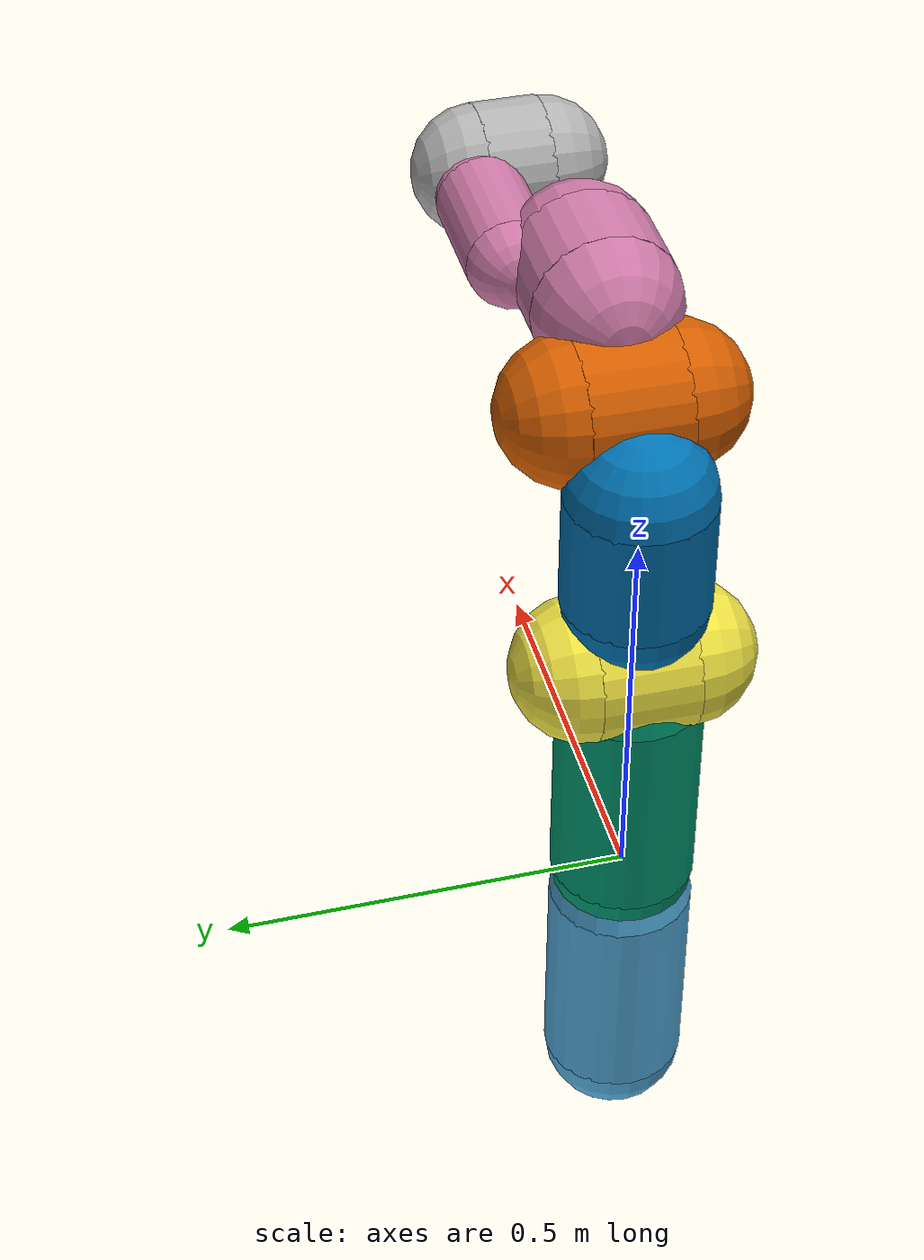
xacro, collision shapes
<?xml version="1.0" encoding="utf-8"?>
<robot xmlns:xacro="http://www.ros.org/wiki/xacro" name="panda">
  <xacro:arg name="arm_id" default="panda"/>
  <xacro:arg name="use_cylinder_collision_model" default="true"/>
  <xacro:arg name="use_gazebo_sim" default="false"/>
  <xacro:arg name="hardware_interface" default="PositionJointInterface"/>

  <xacro:include filename="$(find franka_description)/robots/panda_arm.xacro" />

  <xacro:if value="$(arg use_gazebo_sim)">
    <xacro:include filename="$(find franka_description)/robots/panda.gazebo.xacro"/>
    <xacro:include filename="$(find franka_description)/robots/panda.control.xacro"/>
  </xacro:if>
  <link name="world"/>
  <xacro:panda_arm xyz="0 0 0" rpy="0 0 0" connected_to="world" arm_id="$(arg arm_id)" safety_distance="0.03" use_cylinder_collision_model="$(arg use_cylinder_collision_model)"/>

  <xacro:if value="$(arg use_gazebo_sim)">
    <xacro:arm_gazebo arm_id="$(arg arm_id)"/>
    <xacro:arm_control arm_id="$(arg arm_id)" hardware_interface="$(arg hardware_interface)"/>
    <gazebo>
      <plugin name="gazebo_ros_control" filename="libgazebo_ros_control.so"/>
    </gazebo>
  </xacro:if>
</robot>

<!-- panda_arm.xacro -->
<robot xmlns:xacro="http://www.ros.org/wiki/xacro" name="panda">
  <xacro:arg name="use_gazebo_sim" default="false"/>
  <!-- safety_distance: Minimum safety distance in [m] by which the collision volumes are expanded and which is enforced during robot motions -->
  <!-- arm_id: Namespace of the panda arm. Serves to differentiate between arms in case of multiple instances. -->
  <xacro:macro name="panda_arm" params="arm_id:='panda' description_pkg:='franka_description' connected_to:='' xyz:='0 0 0' rpy:='0 0 0' safety_distance:=0 use_cylinder_collision_model:='true'">
    <xacro:unless value="${not connected_to}">
      <joint name="${arm_id}_virtual_joint" type="fixed">
        <parent link="${connected_to}"/>
        <child link="${arm_id}_link0"/>
        <origin rpy="${rpy}" xyz="${xyz}"/>
        <xacro:if value="$(arg use_gazebo_sim)">
          <dynamics damping="1.0"/>
        </xacro:if>
      </joint>
    </xacro:unless>
    <xacro:macro name="arm_link" params="name visual_mesh:='' collision_mesh:='' mass:='0.0'
      **cylinder_collision_model use_cylinder_collision_model:='true'">
      <link name="${name}">
        <xacro:unless value="${not visual_mesh}">
          <visual>
            <geometry>
              <mesh filename="${visual_mesh}"/>
            </geometry>
          </visual>
        </xacro:unless>
        <xacro:if value="${use_cylinder_collision_model}">
          <xacro:insert_block name="cylinder_collision_model"/>
        </xacro:if>
        <!-- Fallback to mesh model, when cylinder collision model is requested to be not used and
             there is a specified collision mesh.-->
        <xacro:unless value="${use_cylinder_collision_model and (not collision_mesh)}">
          <collision>
            <geometry>
              <mesh filename="${collision_mesh}"/>
            </geometry>
          </collision>
        </xacro:unless>
        <xacro:if value="$(arg use_gazebo_sim)">
          <inertial>
            <origin xyz="0 0 0" rpy="0 0 0" />
            <mass value="${mass}"/>
            <inertia ixx="0.3" ixy="0.0" ixz="0.0" iyy="0.3" iyz="0.0" izz="0.3" />
          </inertial>
        </xacro:if>
      </link>
    </xacro:macro>

    <xacro:macro name="arm_joint" params="name type:='fixed' rpy xyz soft_lower_limit:='' soft_upper_limit:=''
                            parent_link child_link limit_effort:='' limit_lower:='' limit_upper:='' limit_velocity:=''">
      <joint name="${name}" type="${type}">
        <xacro:if value="${type == 'revolute'}">
          <safety_controller k_position="100.0" k_velocity="40.0" soft_lower_limit="${soft_lower_limit}" soft_upper_limit="${soft_upper_limit}"/>
        </xacro:if>
        <origin rpy="${rpy}" xyz="${xyz}"/>
        <parent link="${parent_link}"/>
        <child link="${child_link}"/>
        <xacro:if value="${type == 'revolute'}">
          <limit effort="${limit_effort}" lower="${limit_lower}" upper="${limit_upper}" velocity="${limit_velocity}"/>
          <axis xyz="0 0 1"/>
        </xacro:if>
        <xacro:if value="${type == 'fixed'}">
          <axis xyz="0 0 0"/>
        </xacro:if>
        <dynamics damping="1.0"/>
      </joint>
    </xacro:macro>

    <xacro:if value="${use_cylinder_collision_model}">
      <xacro:arm_link name="${arm_id}_link0" visual_mesh="package://${description_pkg}/meshes/visual/link0.dae" mass="3.06">
        <cylinder_collision_model>
          <collision>
            <origin xyz="0 0 -0.1915" rpy="0 0 0"/>
            <geometry>
              <cylinder radius="${0.06+safety_distance}" length="0.2830" />
            </geometry>
          </collision>
          <collision>
            <origin xyz="0 0 -0.333" rpy="0 0 0"/>
            <geometry>
              <sphere radius="${0.06+safety_distance}" />
            </geometry>
          </collision>
          <collision>
            <origin xyz="0 0 -0.05" rpy="0 0 0"/>
            <geometry>
              <sphere radius="${0.06+safety_distance}" />
            </geometry>
          </collision>
        </cylinder_collision_model>
      </xacro:arm_link>
      <xacro:arm_link name="${arm_id}_link1" visual_mesh="package://${description_pkg}/meshes/visual/link1.dae" mass="2.34">
        <cylinder_collision_model>
          <collision>
            <origin xyz="0 0 -0.1915" rpy="0 0 0"/>
            <geometry>
              <cylinder radius="${0.06+safety_distance}" length="0.2830" />
            </geometry>
          </collision>
          <collision>
            <origin xyz="0 0 -0.333" rpy="0 0 0"/>
            <geometry>
              <sphere radius="${0.06+safety_distance}" />
            </geometry>
          </collision>
          <collision>
            <origin xyz="0 0 -0.05" rpy="0 0 0"/>
            <geometry>
              <sphere radius="${0.06+safety_distance}" />
            </geometry>
          </collision>
        </cylinder_collision_model>
      </xacro:arm_link>
      <xacro:arm_link name="${arm_id}_link2" visual_mesh="package://${description_pkg}/meshes/visual/link2.dae" mass="2.36">
        <cylinder_collision_model>
          <collision>
            <origin xyz="0 0 0" rpy="0 0 0"/>
            <geometry>
              <cylinder radius="${0.06+safety_distance}" length="0.12" />
            </geometry>
          </collision>
          <collision>
            <origin xyz="0 0 -0.06" rpy="0 0 0"/>
            <geometry>
              <sphere radius="${0.06+safety_distance}" />
            </geometry>
          </collision>
          <collision>
            <origin xyz="0 0 0.06" rpy="0 0 0"/>
            <geometry>
              <sphere radius="${0.06+safety_distance}" />
            </geometry>
          </collision>
        </cylinder_collision_model>
      </xacro:arm_link>
      <xacro:arm_link name="${arm_id}_link3" visual_mesh="package://${description_pkg}/meshes/visual/link3.dae" mass="2.38">
        <cylinder_collision_model>
          <collision>
            <origin xyz="0 0 -0.145" rpy="0 0 0"/>
            <geometry>
              <cylinder radius="${0.06+safety_distance}" length="0.15" />
            </geometry>
          </collision>
          <collision>
            <origin xyz="0 0 -0.22" rpy="0 0 0"/>
            <geometry>
              <sphere radius="${0.06+safety_distance}" />
            </geometry>
          </collision>
          <collision>
            <origin xyz="0 0 -0.07" rpy="0 0 0"/>
            <geometry>
              <sphere radius="${0.06+safety_distance}" />
            </geometry>
          </collision>
        </cylinder_collision_model>
      </xacro:arm_link>
      <xacro:arm_link name="${arm_id}_link4" visual_mesh="package://${description_pkg}/meshes/visual/link4.dae" mass="2.43">
        <cylinder_collision_model>
          <collision>
            <origin xyz="0 0 0" rpy="0 0 0"/>
            <geometry>
              <cylinder radius="${0.06+safety_distance}" length="0.12" />
            </geometry>
          </collision>
          <collision>
            <origin xyz="0 0 0.06" rpy="0 0 0"/>
            <geometry>
              <sphere radius="${0.06+safety_distance}" />
            </geometry>
          </collision>
          <collision>
            <origin xyz="0 0 -0.06" rpy="0 0 0"/>
            <geometry>
              <sphere radius="${0.06+safety_distance}" />
            </geometry>
          </collision>
        </cylinder_collision_model>
      </xacro:arm_link>
      <xacro:arm_link name="${arm_id}_link5" visual_mesh="package://${description_pkg}/meshes/visual/link5.dae" mass="3.5">
        <cylinder_collision_model>
          <collision>
            <origin xyz="0 0 -0.26" rpy="0 0 0"/>
            <geometry>
              <cylinder radius="${0.06+safety_distance}" length="0.1" />
            </geometry>
          </collision>
          <collision>
            <origin xyz="0 0 -0.31" rpy="0 0 0"/>
            <geometry>
              <sphere radius="${0.06+safety_distance}" />
            </geometry>
          </collision>
          <collision>
            <origin xyz="0 0 -0.21" rpy="0 0 0"/>
            <geometry>
              <sphere radius="${0.06+safety_distance}" />
            </geometry>
          </collision>
          <collision>
            <origin xyz="0 0.08 -0.13" rpy="0 0 0"/>
            <geometry>
              <cylinder radius="${0.025+safety_distance}" length="0.14" />
            </geometry>
          </collision>
          <collision>
            <origin xyz="0 0.08 -0.06" rpy="0 0 0"/>
            <geometry>
              <sphere radius="${0.025+safety_distance}" />
            </geometry>
          </collision>
          <collision>
            <origin xyz="0 0.08 -0.20" rpy="0 0 0"/>
            <geometry>
              <sphere radius="${0.025+safety_distance}" />
            </geometry>
          </collision>
        </cylinder_collision_model>
      </xacro:arm_link>
      <xacro:arm_link name="${arm_id}_link6" visual_mesh="package://${description_pkg}/meshes/visual/link6.dae" mass="1.47">
        <cylinder_collision_model>
          <collision>
            <origin xyz="0 0 -0.03" rpy="0 0 0"/>
            <geometry>
              <cylinder radius="${0.05+safety_distance}" length="0.08" />
            </geometry>
          </collision>
          <collision>
            <origin xyz="0 0 0.01" rpy="0 0 0"/>
            <geometry>
              <sphere radius="${0.05+safety_distance}" />
            </geometry>
          </collision>
          <collision>
            <origin xyz="0 0 -0.07" rpy="0 0 0"/>
            <geometry>
              <sphere radius="${0.05+safety_distance}" />
            </geometry>
          </collision>
        </cylinder_collision_model>
      </xacro:arm_link>
      <xacro:arm_link name="${arm_id}_link7" visual_mesh="package://${description_pkg}/meshes/visual/link7.dae" mass="0.45">
        <cylinder_collision_model>
          <collision>
            <origin xyz="0 0 0.01" rpy="0 0 0"/>
            <geometry>
              <cylinder radius="${0.04+safety_distance}" length="0.14" />
            </geometry>
          </collision>
          <collision>
            <origin xyz="0 0 0.08" rpy="0 0 0"/>
            <geometry>
              <sphere radius="${0.04+safety_distance}" />
            </geometry>
          </collision>
          <collision>
            <origin xyz="0 0 -0.06" rpy="0 0 0"/>
            <geometry>
              <sphere radius="${0.04+safety_distance}" />
            </geometry>
          </collision>
        </cylinder_collision_model>
      </xacro:arm_link>
      <xacro:arm_link name="${arm_id}_link8">
        <cylinder_collision_model>
          <collision>
            <origin xyz="0.0424 0.0424 -0.0250" rpy="${pi} ${pi/2} ${pi/2}"/>
            <geometry>
              <cylinder radius="${0.03+safety_distance}" length="0.01" />
            </geometry>
          </collision>
          <collision>
            <origin xyz="0.0424 0.0424 -0.02" rpy="0 0 0"/>
            <geometry>
              <sphere radius="${0.03+safety_distance}" />
            </geometry>
          </collision>
          <collision>
            <origin xyz="0.0424 0.0424 -0.03" rpy="0 0 0"/>
            <geometry>
              <sphere radius="${0.03+safety_distance}" />
            </geometry>
          </collision>
        </cylinder_collision_model>
      </xacro:arm_link>
    </xacro:if>
    <!-- Empty content must be passed for cylinder_collision_model as block parameters cannot be defaulted-->
    <xacro:unless value="${use_cylinder_collision_model}">
      <xacro:arm_link name="${arm_id}_link0" visual_mesh="package://${description_pkg}/meshes/visual/link0.dae" collision_mesh="package://${description_pkg}/meshes/collision/link0.stl" mass="3.06" use_cylinder_collision_model="false">
        <cylinder_collision_model></cylinder_collision_model>
      </xacro:arm_link>
      <xacro:arm_link name="${arm_id}_link1" visual_mesh="package://${description_pkg}/meshes/visual/link1.dae" collision_mesh="package://${description_pkg}/meshes/collision/link1.stl" mass="2.34" use_cylinder_collision_model="false">
        <cylinder_collision_model></cylinder_collision_model>
      </xacro:arm_link>
      <xacro:arm_link name="${arm_id}_link2" visual_mesh="package://${description_pkg}/meshes/visual/link2.dae" collision_mesh="package://${description_pkg}/meshes/collision/link2.stl" mass="2.36" use_cylinder_collision_model="false">
        <cylinder_collision_model></cylinder_collision_model>
      </xacro:arm_link>
      <xacro:arm_link name="${arm_id}_link3" visual_mesh="package://${description_pkg}/meshes/visual/link3.dae" collision_mesh="package://${description_pkg}/meshes/collision/link3.stl" mass="2.38" use_cylinder_collision_model="false">
        <cylinder_collision_model></cylinder_collision_model>
      </xacro:arm_link>
      <xacro:arm_link name="${arm_id}_link4" visual_mesh="package://${description_pkg}/meshes/visual/link4.dae" collision_mesh="package://${description_pkg}/meshes/collision/link4.stl" mass="2.43" use_cylinder_collision_model="false">
        <cylinder_collision_model></cylinder_collision_model>
      </xacro:arm_link>
      <xacro:arm_link name="${arm_id}_link5" visual_mesh="package://${description_pkg}/meshes/visual/link5.dae" collision_mesh="package://${description_pkg}/meshes/collision/link5.stl" mass="3.5" use_cylinder_collision_model="false">
        <cylinder_collision_model></cylinder_collision_model>
      </xacro:arm_link>
      <xacro:arm_link name="${arm_id}_link6" visual_mesh="package://${description_pkg}/meshes/visual/link6.dae" collision_mesh="package://${description_pkg}/meshes/collision/link6.stl" mass="1.47" use_cylinder_collision_model="false">
        <cylinder_collision_model></cylinder_collision_model>
      </xacro:arm_link>
      <xacro:arm_link name="${arm_id}_link7" visual_mesh="package://${description_pkg}/meshes/visual/link7.dae" collision_mesh="package://${description_pkg}/meshes/collision/link7.stl" mass="0.45" use_cylinder_collision_model="false">
        <cylinder_collision_model></cylinder_collision_model>
      </xacro:arm_link>
      <xacro:arm_link name="${arm_id}_link8">
        <cylinder_collision_model></cylinder_collision_model>
      </xacro:arm_link>
    </xacro:unless>

    <xacro:arm_joint name="${arm_id}_joint1" type="revolute" soft_lower_limit="-2.8973" soft_upper_limit="2.8973" rpy="0 0 0" xyz="0 0 0.333" parent_link="${arm_id}_link0" child_link="${arm_id}_link1" limit_effort="87" limit_lower="-2.8973" limit_upper="2.8973" limit_velocity="2.1750"/>
    <xacro:arm_joint name="${arm_id}_joint2" type="revolute" soft_lower_limit="-1.7628" soft_upper_limit="1.7628" rpy="${-pi/2} 0 0" xyz="0 0 0" parent_link="${arm_id}_link1" child_link="${arm_id}_link2" limit_effort="87" limit_lower="-1.7628" limit_upper="1.7628" limit_velocity="2.1750"/>
    <xacro:arm_joint name="${arm_id}_joint3" type="revolute" soft_lower_limit="-2.8973" soft_upper_limit="2.8973" rpy="${pi/2} 0 0" xyz="0 -0.316 0" parent_link="${arm_id}_link2" child_link="${arm_id}_link3" limit_effort="87" limit_lower="-2.8973" limit_upper="2.8973" limit_velocity="2.1750"/>
    <xacro:arm_joint name="${arm_id}_joint4" type="revolute" soft_lower_limit="-3.0718" soft_upper_limit="-0.0698" rpy="${pi/2} 0 0" xyz="0.0825 0 0" parent_link="${arm_id}_link3" child_link="${arm_id}_link4" limit_effort="87" limit_lower="-3.0718" limit_upper="-0.0698" limit_velocity="2.1750"/>
    <xacro:arm_joint name="${arm_id}_joint5" type="revolute" soft_lower_limit="-2.8973" soft_upper_limit="2.8973" rpy="${-pi/2} 0 0" xyz="-0.0825 0.384 0" parent_link="${arm_id}_link4" child_link="${arm_id}_link5" limit_effort="12" limit_lower="-2.8973" limit_upper="2.8973" limit_velocity="2.6100"/>
    <xacro:arm_joint name="${arm_id}_joint6" type="revolute" soft_lower_limit="-0.0175" soft_upper_limit="3.7525" rpy="${pi/2} 0 0" xyz="0 0 0" parent_link="${arm_id}_link5" child_link="${arm_id}_link6" limit_effort="12" limit_lower="-0.0175" limit_upper="3.7525" limit_velocity="2.6100"/>
    <xacro:arm_joint name="${arm_id}_joint7" type="revolute" soft_lower_limit="-2.8973" soft_upper_limit="2.8973" rpy="${pi/2} 0 0" xyz="0.088 0 0" parent_link="${arm_id}_link6" child_link="${arm_id}_link7" limit_effort="12" limit_lower="-2.8973" limit_upper="2.8973" limit_velocity="2.6100"/>
    <xacro:arm_joint name="${arm_id}_joint8" type="fixed" parent_link="${arm_id}_link7" child_link="${arm_id}_link8" rpy="0 0 0" xyz="0 0 0.107"/>
  </xacro:macro>
</robot>
